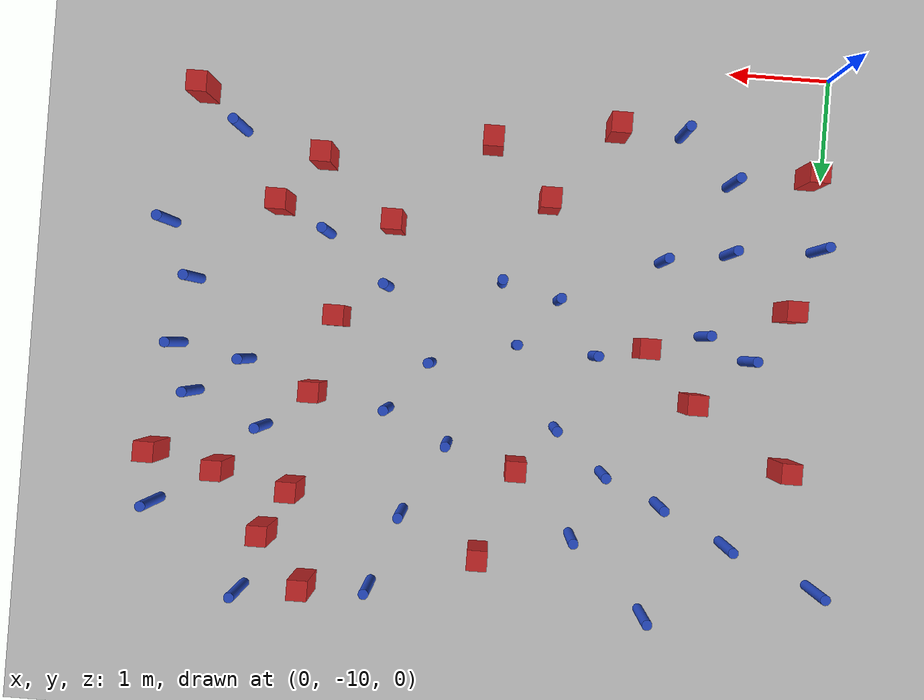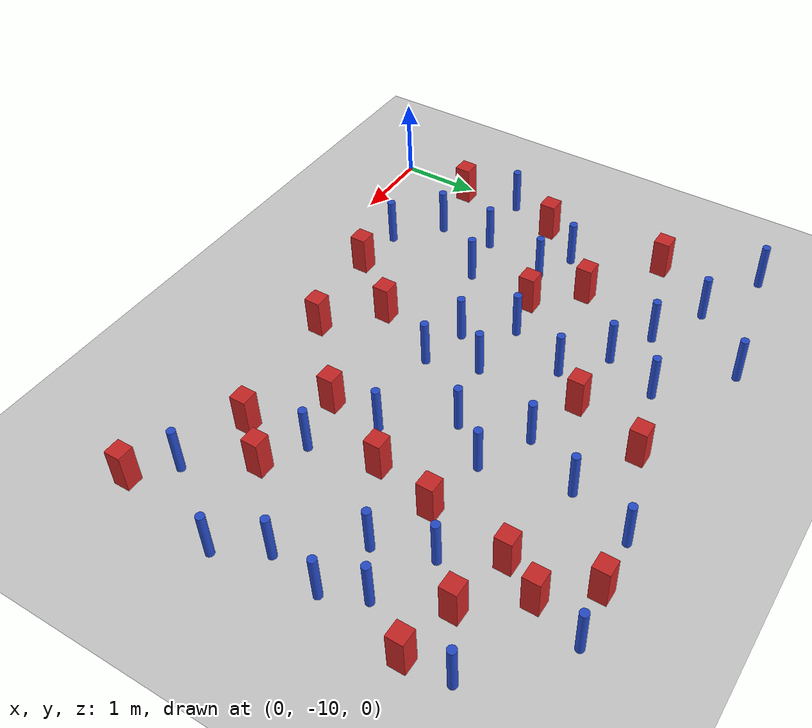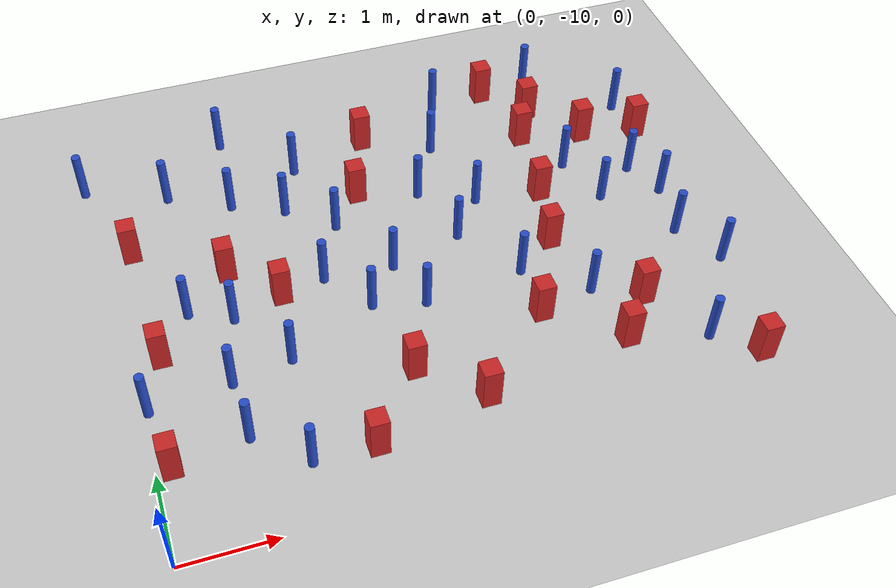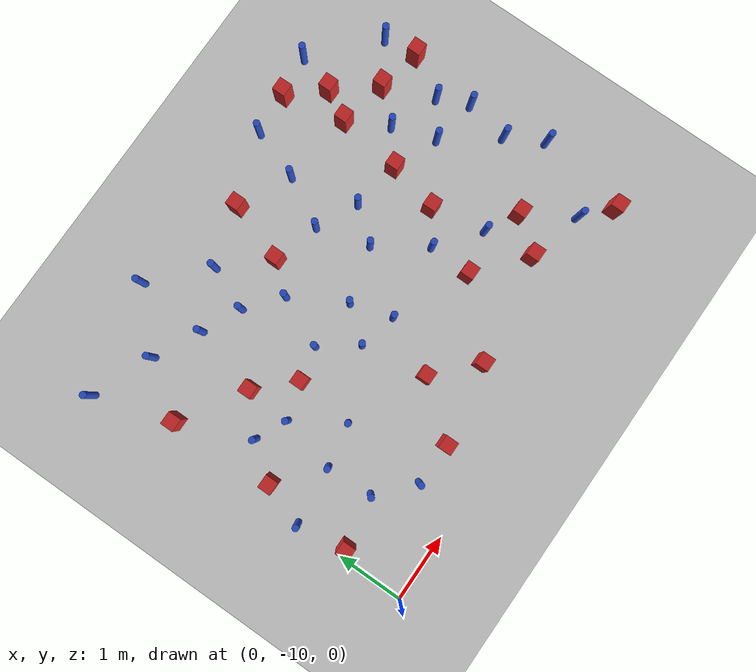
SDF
<sdf version="1.6">
 <world name="default">
  <model name="ground_plane">
   <static>1</static>
   <link name="link">
    <collision name="collision">
     <geometry><plane><normal>0 0 1</normal><size>100 100</size></plane></geometry>
     <surface><friction><ode><mu>100</mu><mu2>50</mu2></ode></friction></surface>
    </collision>
    <visual name="visual">
     <cast_shadows>0</cast_shadows>
     <geometry><plane><normal>0 0 1</normal><size>100 100</size></plane></geometry>
     <material>
      <ambient>1.0 1.0 1.0 1.0</ambient>
      <diffuse>0.8 0.8 0.8 1.0</diffuse>
      <specular>0.01 0.01 0.01 1.000000</specular>
     </material>
    </visual>
   </link>
  </model>
  <model name="square_post_obstacle1">
   <static>true</static>
   <pose>2.71441705244 -8.55619411679 1.91545236811e-07 -7.35059704564e-06 1.12565212e-07 2.39332434364e-05</pose>
   <link name="link">
    <pose>0 0 0.25 0 -0 0</pose>
    <inertial>
     <mass>100</mass>
     <inertia>
      <ixx>0.166667</ixx>
      <ixy>0</ixy>
      <ixz>0</ixz>
      <iyy>0.166667</iyy>
      <iyz>0</iyz>
      <izz>0.166667</izz>
     </inertia>
    </inertial>
    <collision name="collision"><geometry><box><size>.2 .2 .5</size></box></geometry></collision>
    <visual name="visual">
     <geometry><box><size>.2 .2 .5</size></box></geometry>
     <material>
      <script><name>Gazebo/Red</name><uri>file://media/materials/scripts/gazebo.material</uri></script>
     </material>
    </visual>
   </link>
  </model>
  <model name="pole_obstacle5">
   <static>true</static>
   <pose>2.26358996405 -5.2780489103 7.38925637345e-09 -8.47170692798e-08 1.24976765033e-08 -1.74513093019e-07</pose>
   <link name="link">
    <pose>0 0 0.3 0 -0 0</pose>
    <inertial>
     <mass>1</mass>
     <inertia><ixx>0.145833</ixx><ixy>0</ixy><ixz>0</ixz><iyy>0.145833</iyy><iyz>0</iyz><izz>0.125</izz></inertia>
    </inertial>
    <collision name="collision">
     <geometry><cylinder><radius>0.05</radius><length>.6</length></cylinder></geometry>
    </collision>
    <visual name="visual">
     <geometry><cylinder><radius>0.05</radius><length>.6</length></cylinder></geometry>
     <material>
      <script><name>Gazebo/Blue</name><uri>file://media/materials/scripts/gazebo.material</uri></script>
     </material>
    </visual>
   </link>
  </model>
  <model name="square_post_obstacle19">
   <static>true</static>
   <pose>5.28989070579 -5.09956356859 1.91545236811e-07 -7.35059704564e-06 1.12565212e-07 2.39332434364e-05</pose>
   <link name="link">
    <pose>0 0 0.25 0 -0 0</pose>
    <inertial>
     <mass>100</mass>
     <inertia>
      <ixx>0.166667</ixx>
      <ixy>0</ixy>
      <ixz>0</ixz>
      <iyy>0.166667</iyy>
      <iyz>0</iyz>
      <izz>0.166667</izz>
     </inertia>
    </inertial>
    <collision name="collision"><geometry><box><size>.2 .2 .5</size></box></geometry></collision>
    <visual name="visual">
     <geometry><box><size>.2 .2 .5</size></box></geometry>
     <material>
      <script><name>Gazebo/Red</name><uri>file://media/materials/scripts/gazebo.material</uri></script>
     </material>
    </visual>
   </link>
  </model>
  <model name="square_post_obstacle21">
   <static>true</static>
   <pose>1.66010883384 -7.17932210898 1.91545236811e-07 -7.35059704564e-06 1.12565212e-07 2.39332434364e-05</pose>
   <link name="link">
    <pose>0 0 0.25 0 -0 0</pose>
    <inertial>
     <mass>100</mass>
     <inertia>
      <ixx>0.166667</ixx>
      <ixy>0</ixy>
      <ixz>0</ixz>
      <iyy>0.166667</iyy>
      <iyz>0</iyz>
      <izz>0.166667</izz>
     </inertia>
    </inertial>
    <collision name="collision"><geometry><box><size>.2 .2 .5</size></box></geometry></collision>
    <visual name="visual">
     <geometry><box><size>.2 .2 .5</size></box></geometry>
     <material>
      <script><name>Gazebo/Red</name><uri>file://media/materials/scripts/gazebo.material</uri></script>
     </material>
    </visual>
   </link>
  </model>
  <model name="square_post_obstacle22">
   <static>true</static>
   <pose>0.160508512705 -8.99305265205 1.91545236811e-07 -7.35059704564e-06 1.12565212e-07 2.39332434364e-05</pose>
   <link name="link">
    <pose>0 0 0.25 0 -0 0</pose>
    <inertial>
     <mass>100</mass>
     <inertia>
      <ixx>0.166667</ixx>
      <ixy>0</ixy>
      <ixz>0</ixz>
      <iyy>0.166667</iyy>
      <iyz>0</iyz>
      <izz>0.166667</izz>
     </inertia>
    </inertial>
    <collision name="collision"><geometry><box><size>.2 .2 .5</size></box></geometry></collision>
    <visual name="visual">
     <geometry><box><size>.2 .2 .5</size></box></geometry>
     <material>
      <script><name>Gazebo/Red</name><uri>file://media/materials/scripts/gazebo.material</uri></script>
     </material>
    </visual>
   </link>
  </model>
  <model name="square_post_obstacle29">
   <static>true</static>
   <pose>5.77120128893 -5.69226536797 1.91545236811e-07 -7.35059704564e-06 1.12565212e-07 2.39332434364e-05</pose>
   <link name="link">
    <pose>0 0 0.25 0 -0 0</pose>
    <inertial>
     <mass>100</mass>
     <inertia>
      <ixx>0.166667</ixx>
      <ixy>0</ixy>
      <ixz>0</ixz>
      <iyy>0.166667</iyy>
      <iyz>0</iyz>
      <izz>0.166667</izz>
     </inertia>
    </inertial>
    <collision name="collision"><geometry><box><size>.2 .2 .5</size></box></geometry></collision>
    <visual name="visual">
     <geometry><box><size>.2 .2 .5</size></box></geometry>
     <material>
      <script><name>Gazebo/Red</name><uri>file://media/materials/scripts/gazebo.material</uri></script>
     </material>
    </visual>
   </link>
  </model>
  <model name="pole_obstacle30">
   <static>true</static>
   <pose>3.54600438742 -6.10327835381 7.38925637345e-09 -8.47170692798e-08 1.24976765033e-08 -1.74513093019e-07</pose>
   <link name="link">
    <pose>0 0 0.3 0 -0 0</pose>
    <inertial>
     <mass>1</mass>
     <inertia><ixx>0.145833</ixx><ixy>0</ixy><ixz>0</ixz><iyy>0.145833</iyy><iyz>0</iyz><izz>0.125</izz></inertia>
    </inertial>
    <collision name="collision">
     <geometry><cylinder><radius>0.05</radius><length>.6</length></cylinder></geometry>
    </collision>
    <visual name="visual">
     <geometry><cylinder><radius>0.05</radius><length>.6</length></cylinder></geometry>
     <material>
      <script><name>Gazebo/Blue</name><uri>file://media/materials/scripts/gazebo.material</uri></script>
     </material>
    </visual>
   </link>
  </model>
  <model name="pole_obstacle50">
   <static>true</static>
   <pose>5.4804808269 -4.52001710011 7.38925637345e-09 -8.47170692796e-08 1.24976764786e-08 -1.74513093032e-07</pose>
   <link name="link">
    <pose>0 0 0.3 0 -0 0</pose>
    <inertial>
     <mass>1</mass>
     <inertia><ixx>0.145833</ixx><ixy>0</ixy><ixz>0</ixz><iyy>0.145833</iyy><iyz>0</iyz><izz>0.125</izz></inertia>
    </inertial>
    <collision name="collision">
     <geometry><cylinder><radius>0.05</radius><length>.6</length></cylinder></geometry>
    </collision>
    <visual name="visual">
     <geometry><cylinder><radius>0.05</radius><length>.6</length></cylinder></geometry>
     <material>
      <script><name>Gazebo/Blue</name><uri>file://media/materials/scripts/gazebo.material</uri></script>
     </material>
    </visual>
   </link>
  </model>
  <model name="pole_obstacle57">
   <static>true</static>
   <pose>0.940170499249 -8.8630748402 7.38925637345e-09 -8.47170692797e-08 1.249767648e-08 -1.74513093032e-07</pose>
   <link name="link">
    <pose>0 0 0.3 0 -0 0</pose>
    <inertial>
     <mass>1</mass>
     <inertia><ixx>0.145833</ixx><ixy>0</ixy><ixz>0</ixz><iyy>0.145833</iyy><iyz>0</iyz><izz>0.125</izz></inertia>
    </inertial>
    <collision name="collision">
     <geometry><cylinder><radius>0.05</radius><length>.6</length></cylinder></geometry>
    </collision>
    <visual name="visual">
     <geometry><cylinder><radius>0.05</radius><length>.6</length></cylinder></geometry>
     <material>
      <script><name>Gazebo/Blue</name><uri>file://media/materials/scripts/gazebo.material</uri></script>
     </material>
    </visual>
   </link>
  </model>
  <model name="pole_obstacle59">
   <static>true</static>
   <pose>0.0486177777004 -8.27092171029 7.38925637345e-09 -8.47170692796e-08 1.24976764747e-08 -1.74513093035e-07</pose>
   <link name="link">
    <pose>0 0 0.3 0 -0 0</pose>
    <inertial>
     <mass>1</mass>
     <inertia><ixx>0.145833</ixx><ixy>0</ixy><ixz>0</ixz><iyy>0.145833</iyy><iyz>0</iyz><izz>0.125</izz></inertia>
    </inertial>
    <collision name="collision">
     <geometry><cylinder><radius>0.05</radius><length>.6</length></cylinder></geometry>
    </collision>
    <visual name="visual">
     <geometry><cylinder><radius>0.05</radius><length>.6</length></cylinder></geometry>
     <material>
      <script><name>Gazebo/Blue</name><uri>file://media/materials/scripts/gazebo.material</uri></script>
     </material>
    </visual>
   </link>
  </model>
  <model name="pole_obstacle61">
   <static>true</static>
   <pose>0.650569126891 -7.13187820329 7.38925637345e-09 -8.471706928e-08 1.24976765086e-08 -1.74513093015e-07</pose>
   <link name="link">
    <pose>0 0 0.3 0 -0 0</pose>
    <inertial>
     <mass>1</mass>
     <inertia><ixx>0.145833</ixx><ixy>0</ixy><ixz>0</ixz><iyy>0.145833</iyy><iyz>0</iyz><izz>0.125</izz></inertia>
    </inertial>
    <collision name="collision">
     <geometry><cylinder><radius>0.05</radius><length>.6</length></cylinder></geometry>
    </collision>
    <visual name="visual">
     <geometry><cylinder><radius>0.05</radius><length>.6</length></cylinder></geometry>
     <material>
      <script><name>Gazebo/Blue</name><uri>file://media/materials/scripts/gazebo.material</uri></script>
     </material>
    </visual>
   </link>
  </model>
  <model name="square_post_obstacle66">
   <static>true</static>
   <pose>3.1629141798 -5.02640652487 1.91545236811e-07 -7.35059704564e-06 1.12565212e-07 2.39332434364e-05</pose>
   <link name="link">
    <pose>0 0 0.25 0 -0 0</pose>
    <inertial>
     <mass>100</mass>
     <inertia>
      <ixx>0.166667</ixx>
      <ixy>0</ixy>
      <ixz>0</ixz>
      <iyy>0.166667</iyy>
      <iyz>0</iyz>
      <izz>0.166667</izz>
     </inertia>
    </inertial>
    <collision name="collision"><geometry><box><size>.2 .2 .5</size></box></geometry></collision>
    <visual name="visual">
     <geometry><box><size>.2 .2 .5</size></box></geometry>
     <material>
      <script><name>Gazebo/Red</name><uri>file://media/materials/scripts/gazebo.material</uri></script>
     </material>
    </visual>
   </link>
  </model>
  <model name="pole_obstacle66">
   <static>true</static>
   <pose>2.93390093984 -7.11893839754 7.38925637345e-09 -8.47170692798e-08 1.24976765033e-08 -1.74513093019e-07</pose>
   <link name="link">
    <pose>0 0 0.3 0 -0 0</pose>
    <inertial>
     <mass>1</mass>
     <inertia><ixx>0.145833</ixx><ixy>0</ixy><ixz>0</ixz><iyy>0.145833</iyy><iyz>0</iyz><izz>0.125</izz></inertia>
    </inertial>
    <collision name="collision">
     <geometry><cylinder><radius>0.05</radius><length>.6</length></cylinder></geometry>
    </collision>
    <visual name="visual">
     <geometry><cylinder><radius>0.05</radius><length>.6</length></cylinder></geometry>
     <material>
      <script><name>Gazebo/Blue</name><uri>file://media/materials/scripts/gazebo.material</uri></script>
     </material>
    </visual>
   </link>
  </model>
  <model name="pole_obstacle71">
   <static>true</static>
   <pose>6.07734022742 -6.43060885112 7.38925637345e-09 -8.47170692796e-08 1.24976764786e-08 -1.74513093032e-07</pose>
   <link name="link">
    <pose>0 0 0.3 0 -0 0</pose>
    <inertial>
     <mass>1</mass>
     <inertia><ixx>0.145833</ixx><ixy>0</ixy><ixz>0</ixz><iyy>0.145833</iyy><iyz>0</iyz><izz>0.125</izz></inertia>
    </inertial>
    <collision name="collision">
     <geometry><cylinder><radius>0.05</radius><length>.6</length></cylinder></geometry>
    </collision>
    <visual name="visual">
     <geometry><cylinder><radius>0.05</radius><length>.6</length></cylinder></geometry>
     <material>
      <script><name>Gazebo/Blue</name><uri>file://media/materials/scripts/gazebo.material</uri></script>
     </material>
    </visual>
   </link>
  </model>
  <model name="pole_obstacle88">
   <static>true</static>
   <pose>1.56127262203 -8.05126644182 7.38925637345e-09 -8.47170692798e-08 1.24976764881e-08 -1.74513093027e-07</pose>
   <link name="link">
    <pose>0 0 0.3 0 -0 0</pose>
    <inertial>
     <mass>1</mass>
     <inertia><ixx>0.145833</ixx><ixy>0</ixy><ixz>0</ixz><iyy>0.145833</iyy><iyz>0</iyz><izz>0.125</izz></inertia>
    </inertial>
    <collision name="collision">
     <geometry><cylinder><radius>0.05</radius><length>.6</length></cylinder></geometry>
    </collision>
    <visual name="visual">
     <geometry><cylinder><radius>0.05</radius><length>.6</length></cylinder></geometry>
     <material>
      <script><name>Gazebo/Blue</name><uri>file://media/materials/scripts/gazebo.material</uri></script>
     </material>
    </visual>
   </link>
  </model>
  <model name="square_post_obstacle83">
   <static>true</static>
   <pose>5.0443894398 -5.53916724651 1.91545236811e-07 -7.35059704564e-06 1.12565212e-07 2.39332434364e-05</pose>
   <link name="link">
    <pose>0 0 0.25 0 -0 0</pose>
    <inertial>
     <mass>100</mass>
     <inertia>
      <ixx>0.166667</ixx>
      <ixy>0</ixy>
      <ixz>0</ixz>
      <iyy>0.166667</iyy>
      <iyz>0</iyz>
      <izz>0.166667</izz>
     </inertia>
    </inertial>
    <collision name="collision"><geometry><box><size>.2 .2 .5</size></box></geometry></collision>
    <visual name="visual">
     <geometry><box><size>.2 .2 .5</size></box></geometry>
     <material>
      <script><name>Gazebo/Red</name><uri>file://media/materials/scripts/gazebo.material</uri></script>
     </material>
    </visual>
   </link>
  </model>
  <model name="pole_obstacle108">
   <static>true</static>
   <pose>4.87133378949 -8.08932043515 7.38925637345e-09 -8.471706928e-08 1.24976765081e-08 -1.74513093015e-07</pose>
   <link name="link">
    <pose>0 0 0.3 0 -0 0</pose>
    <inertial>
     <mass>1</mass>
     <inertia><ixx>0.145833</ixx><ixy>0</ixy><ixz>0</ixz><iyy>0.145833</iyy><iyz>0</iyz><izz>0.125</izz></inertia>
    </inertial>
    <collision name="collision">
     <geometry><cylinder><radius>0.05</radius><length>.6</length></cylinder></geometry>
    </collision>
    <visual name="visual">
     <geometry><cylinder><radius>0.05</radius><length>.6</length></cylinder></geometry>
     <material>
      <script><name>Gazebo/Blue</name><uri>file://media/materials/scripts/gazebo.material</uri></script>
     </material>
    </visual>
   </link>
  </model>
  <model name="square_post_obstacle96">
   <static>true</static>
   <pose>0.215471795895 -6.08434844058 1.91545236811e-07 -7.35059704564e-06 1.12565212e-07 2.39332434364e-05</pose>
   <link name="link">
    <pose>0 0 0.25 0 -0 0</pose>
    <inertial>
     <mass>100</mass>
     <inertia>
      <ixx>0.166667</ixx>
      <ixy>0</ixy>
      <ixz>0</ixz>
      <iyy>0.166667</iyy>
      <iyz>0</iyz>
      <izz>0.166667</izz>
     </inertia>
    </inertial>
    <collision name="collision"><geometry><box><size>.2 .2 .5</size></box></geometry></collision>
    <visual name="visual">
     <geometry><box><size>.2 .2 .5</size></box></geometry>
     <material>
      <script><name>Gazebo/Red</name><uri>file://media/materials/scripts/gazebo.material</uri></script>
     </material>
    </visual>
   </link>
  </model>
  <model name="pole_obstacle111">
   <static>true</static>
   <pose>3.94208417396 -5.3944527896 7.38925637345e-09 -8.47170692798e-08 1.24976765033e-08 -1.74513093019e-07</pose>
   <link name="link">
    <pose>0 0 0.3 0 -0 0</pose>
    <inertial>
     <mass>1</mass>
     <inertia><ixx>0.145833</ixx><ixy>0</ixy><ixz>0</ixz><iyy>0.145833</iyy><iyz>0</iyz><izz>0.125</izz></inertia>
    </inertial>
    <collision name="collision">
     <geometry><cylinder><radius>0.05</radius><length>.6</length></cylinder></geometry>
    </collision>
    <visual name="visual">
     <geometry><cylinder><radius>0.05</radius><length>.6</length></cylinder></geometry>
     <material>
      <script><name>Gazebo/Blue</name><uri>file://media/materials/scripts/gazebo.material</uri></script>
     </material>
    </visual>
   </link>
  </model>
  <model name="square_post_obstacle99">
   <static>true</static>
   <pose>0.27990490118 -7.64426604739 1.91545236811e-07 -7.35059704564e-06 1.12565212e-07 2.39332434364e-05</pose>
   <link name="link">
    <pose>0 0 0.25 0 -0 0</pose>
    <inertial>
     <mass>100</mass>
     <inertia>
      <ixx>0.166667</ixx>
      <ixy>0</ixy>
      <ixz>0</ixz>
      <iyy>0.166667</iyy>
      <iyz>0</iyz>
      <izz>0.166667</izz>
     </inertia>
    </inertial>
    <collision name="collision"><geometry><box><size>.2 .2 .5</size></box></geometry></collision>
    <visual name="visual">
     <geometry><box><size>.2 .2 .5</size></box></geometry>
     <material>
      <script><name>Gazebo/Red</name><uri>file://media/materials/scripts/gazebo.material</uri></script>
     </material>
    </visual>
   </link>
  </model>
  <model name="square_post_obstacle100">
   <static>true</static>
   <pose>5.35311219478 -8.34472550928 1.91545236811e-07 -7.35059704564e-06 1.12565212e-07 2.39332434364e-05</pose>
   <link name="link">
    <pose>0 0 0.25 0 -0 0</pose>
    <inertial>
     <mass>100</mass>
     <inertia>
      <ixx>0.166667</ixx>
      <ixy>0</ixy>
      <ixz>0</ixz>
      <iyy>0.166667</iyy>
      <iyz>0</iyz>
      <izz>0.166667</izz>
     </inertia>
    </inertial>
    <collision name="collision"><geometry><box><size>.2 .2 .5</size></box></geometry></collision>
    <visual name="visual">
     <geometry><box><size>.2 .2 .5</size></box></geometry>
     <material>
      <script><name>Gazebo/Red</name><uri>file://media/materials/scripts/gazebo.material</uri></script>
     </material>
    </visual>
   </link>
  </model>
  <model name="pole_obstacle117">
   <static>true</static>
   <pose>6.38607700048 -5.31896174606 7.38925637345e-09 -8.47170692796e-08 1.24976764786e-08 -1.74513093032e-07</pose>
   <link name="link">
    <pose>0 0 0.3 0 -0 0</pose>
    <inertial>
     <mass>1</mass>
     <inertia><ixx>0.145833</ixx><ixy>0</ixy><ixz>0</ixz><iyy>0.145833</iyy><iyz>0</iyz><izz>0.125</izz></inertia>
    </inertial>
    <collision name="collision">
     <geometry><cylinder><radius>0.05</radius><length>.6</length></cylinder></geometry>
    </collision>
    <visual name="visual">
     <geometry><cylinder><radius>0.05</radius><length>.6</length></cylinder></geometry>
     <material>
      <script><name>Gazebo/Blue</name><uri>file://media/materials/scripts/gazebo.material</uri></script>
     </material>
    </visual>
   </link>
  </model>
  <model name="square_post_obstacle106">
   <static>true</static>
   <pose>1.16252022471 -6.67310184528 1.91545236811e-07 -7.35059704564e-06 1.12565212e-07 2.39332434364e-05</pose>
   <link name="link">
    <pose>0 0 0.25 0 -0 0</pose>
    <inertial>
     <mass>100</mass>
     <inertia>
      <ixx>0.166667</ixx>
      <ixy>0</ixy>
      <ixz>0</ixz>
      <iyy>0.166667</iyy>
      <iyz>0</iyz>
      <izz>0.166667</izz>
     </inertia>
    </inertial>
    <collision name="collision"><geometry><box><size>.2 .2 .5</size></box></geometry></collision>
    <visual name="visual">
     <geometry><box><size>.2 .2 .5</size></box></geometry>
     <material>
      <script><name>Gazebo/Red</name><uri>file://media/materials/scripts/gazebo.material</uri></script>
     </material>
    </visual>
   </link>
  </model>
  <model name="square_post_obstacle107">
   <static>true</static>
   <pose>4.89836354818 -6.51384694861 1.91545236811e-07 -7.35059704564e-06 1.12565212e-07 2.39332434364e-05</pose>
   <link name="link">
    <pose>0 0 0.25 0 -0 0</pose>
    <inertial>
     <mass>100</mass>
     <inertia>
      <ixx>0.166667</ixx>
      <ixy>0</ixy>
      <ixz>0</ixz>
      <iyy>0.166667</iyy>
      <iyz>0</iyz>
      <izz>0.166667</izz>
     </inertia>
    </inertial>
    <collision name="collision"><geometry><box><size>.2 .2 .5</size></box></geometry></collision>
    <visual name="visual">
     <geometry><box><size>.2 .2 .5</size></box></geometry>
     <material>
      <script><name>Gazebo/Red</name><uri>file://media/materials/scripts/gazebo.material</uri></script>
     </material>
    </visual>
   </link>
  </model>
  <model name="pole_obstacle129">
   <static>true</static>
   <pose>4.24902525262 -7.60437795628 7.38925637345e-09 -8.47170692796e-08 1.24976764786e-08 -1.74513093032e-07</pose>
   <link name="link">
    <pose>0 0 0.3 0 -0 0</pose>
    <inertial>
     <mass>1</mass>
     <inertia><ixx>0.145833</ixx><ixy>0</ixy><ixz>0</ixz><iyy>0.145833</iyy><iyz>0</iyz><izz>0.125</izz></inertia>
    </inertial>
    <collision name="collision">
     <geometry><cylinder><radius>0.05</radius><length>.6</length></cylinder></geometry>
    </collision>
    <visual name="visual">
     <geometry><cylinder><radius>0.05</radius><length>.6</length></cylinder></geometry>
     <material>
      <script><name>Gazebo/Blue</name><uri>file://media/materials/scripts/gazebo.material</uri></script>
     </material>
    </visual>
   </link>
  </model>
  <model name="pole_obstacle133">
   <static>true</static>
   <pose>4.15835259689 -6.39950488618 7.38925637345e-09 -8.47170692796e-08 1.24976764786e-08 -1.74513093032e-07</pose>
   <link name="link">
    <pose>0 0 0.3 0 -0 0</pose>
    <inertial>
     <mass>1</mass>
     <inertia><ixx>0.145833</ixx><ixy>0</ixy><ixz>0</ixz><iyy>0.145833</iyy><iyz>0</iyz><izz>0.125</izz></inertia>
    </inertial>
    <collision name="collision">
     <geometry><cylinder><radius>0.05</radius><length>.6</length></cylinder></geometry>
    </collision>
    <visual name="visual">
     <geometry><cylinder><radius>0.05</radius><length>.6</length></cylinder></geometry>
     <material>
      <script><name>Gazebo/Blue</name><uri>file://media/materials/scripts/gazebo.material</uri></script>
     </material>
    </visual>
   </link>
  </model>
  <model name="pole_obstacle134">
   <static>true</static>
   <pose>5.57523599489 -6.78240243314 7.38925637345e-09 -8.47170692796e-08 1.24976764786e-08 -1.74513093032e-07</pose>
   <link name="link">
    <pose>0 0 0.3 0 -0 0</pose>
    <inertial>
     <mass>1</mass>
     <inertia><ixx>0.145833</ixx><ixy>0</ixy><ixz>0</ixz><iyy>0.145833</iyy><iyz>0</iyz><izz>0.125</izz></inertia>
    </inertial>
    <collision name="collision">
     <geometry><cylinder><radius>0.05</radius><length>.6</length></cylinder></geometry>
    </collision>
    <visual name="visual">
     <geometry><cylinder><radius>0.05</radius><length>.6</length></cylinder></geometry>
     <material>
      <script><name>Gazebo/Blue</name><uri>file://media/materials/scripts/gazebo.material</uri></script>
     </material>
    </visual>
   </link>
  </model>
  <model name="pole_obstacle135">
   <static>true</static>
   <pose>2.49519627087 -6.32908789132 7.38925637345e-09 -8.47170692798e-08 1.24976765033e-08 -1.74513093019e-07</pose>
   <link name="link">
    <pose>0 0 0.3 0 -0 0</pose>
    <inertial>
     <mass>1</mass>
     <inertia><ixx>0.145833</ixx><ixy>0</ixy><ixz>0</ixz><iyy>0.145833</iyy><iyz>0</iyz><izz>0.125</izz></inertia>
    </inertial>
    <collision name="collision">
     <geometry><cylinder><radius>0.05</radius><length>.6</length></cylinder></geometry>
    </collision>
    <visual name="visual">
     <geometry><cylinder><radius>0.05</radius><length>.6</length></cylinder></geometry>
     <material>
      <script><name>Gazebo/Blue</name><uri>file://media/materials/scripts/gazebo.material</uri></script>
     </material>
    </visual>
   </link>
  </model>
  <model name="square_post_obstacle116">
   <static>true</static>
   <pose>3.31021854955 -9.10409430489 1.91545236811e-07 -7.35059704564e-06 1.12565212e-07 2.39332434364e-05</pose>
   <link name="link">
    <pose>0 0 0.25 0 -0 0</pose>
    <inertial>
     <mass>100</mass>
     <inertia>
      <ixx>0.166667</ixx>
      <ixy>0</ixy>
      <ixz>0</ixz>
      <iyy>0.166667</iyy>
      <iyz>0</iyz>
      <izz>0.166667</izz>
     </inertia>
    </inertial>
    <collision name="collision"><geometry><box><size>.2 .2 .5</size></box></geometry></collision>
    <visual name="visual">
     <geometry><box><size>.2 .2 .5</size></box></geometry>
     <material>
      <script><name>Gazebo/Red</name><uri>file://media/materials/scripts/gazebo.material</uri></script>
     </material>
    </visual>
   </link>
  </model>
  <model name="square_post_obstacle117">
   <static>true</static>
   <pose>4.95525230701 -8.83104305914 1.91545236811e-07 -7.35059704564e-06 1.12565212e-07 2.39332434364e-05</pose>
   <link name="link">
    <pose>0 0 0.25 0 -0 0</pose>
    <inertial>
     <mass>100</mass>
     <inertia>
      <ixx>0.166667</ixx>
      <ixy>0</ixy>
      <ixz>0</ixz>
      <iyy>0.166667</iyy>
      <iyz>0</iyz>
      <izz>0.166667</izz>
     </inertia>
    </inertial>
    <collision name="collision"><geometry><box><size>.2 .2 .5</size></box></geometry></collision>
    <visual name="visual">
     <geometry><box><size>.2 .2 .5</size></box></geometry>
     <material>
      <script><name>Gazebo/Red</name><uri>file://media/materials/scripts/gazebo.material</uri></script>
     </material>
    </visual>
   </link>
  </model>
  <model name="pole_obstacle137">
   <static>true</static>
   <pose>2.15824977867 -7.07056684456 7.38925637345e-09 -8.47170692798e-08 1.24976765033e-08 -1.74513093019e-07</pose>
   <link name="link">
    <pose>0 0 0.3 0 -0 0</pose>
    <inertial>
     <mass>1</mass>
     <inertia><ixx>0.145833</ixx><ixy>0</ixy><ixz>0</ixz><iyy>0.145833</iyy><iyz>0</iyz><izz>0.125</izz></inertia>
    </inertial>
    <collision name="collision">
     <geometry><cylinder><radius>0.05</radius><length>.6</length></cylinder></geometry>
    </collision>
    <visual name="visual">
     <geometry><cylinder><radius>0.05</radius><length>.6</length></cylinder></geometry>
     <material>
      <script><name>Gazebo/Blue</name><uri>file://media/materials/scripts/gazebo.material</uri></script>
     </material>
    </visual>
   </link>
  </model>
  <model name="square_post_obstacle127">
   <static>true</static>
   <pose>2.09571469635 -9.32652840003 1.91545236811e-07 -7.35059704564e-06 1.12565212e-07 2.39332434364e-05</pose>
   <link name="link">
    <pose>0 0 0.25 0 -0 0</pose>
    <inertial>
     <mass>100</mass>
     <inertia>
      <ixx>0.166667</ixx>
      <ixy>0</ixy>
      <ixz>0</ixz>
      <iyy>0.166667</iyy>
      <iyz>0</iyz>
      <izz>0.166667</izz>
     </inertia>
    </inertial>
    <collision name="collision"><geometry><box><size>.2 .2 .5</size></box></geometry></collision>
    <visual name="visual">
     <geometry><box><size>.2 .2 .5</size></box></geometry>
     <material>
      <script><name>Gazebo/Red</name><uri>file://media/materials/scripts/gazebo.material</uri></script>
     </material>
    </visual>
   </link>
  </model>
  <model name="square_post_obstacle132">
   <static>true</static>
   <pose>4.22817737024 -8.23395343743 1.91545236811e-07 -7.35059704564e-06 1.12565212e-07 2.39332434364e-05</pose>
   <link name="link">
    <pose>0 0 0.25 0 -0 0</pose>
    <inertial>
     <mass>100</mass>
     <inertia>
      <ixx>0.166667</ixx>
      <ixy>0</ixy>
      <ixz>0</ixz>
      <iyy>0.166667</iyy>
      <iyz>0</iyz>
      <izz>0.166667</izz>
     </inertia>
    </inertial>
    <collision name="collision"><geometry><box><size>.2 .2 .5</size></box></geometry></collision>
    <visual name="visual">
     <geometry><box><size>.2 .2 .5</size></box></geometry>
     <material>
      <script><name>Gazebo/Red</name><uri>file://media/materials/scripts/gazebo.material</uri></script>
     </material>
    </visual>
   </link>
  </model>
  <model name="pole_obstacle149">
   <static>true</static>
   <pose>-0.159698995438 -4.92976107891 7.38925637345e-09 -8.47170692799e-08 1.24976765043e-08 -1.74513093019e-07</pose>
   <link name="link">
    <pose>0 0 0.3 0 -0 0</pose>
    <inertial>
     <mass>1</mass>
     <inertia><ixx>0.145833</ixx><ixy>0</ixy><ixz>0</ixz><iyy>0.145833</iyy><iyz>0</iyz><izz>0.125</izz></inertia>
    </inertial>
    <collision name="collision">
     <geometry><cylinder><radius>0.05</radius><length>.6</length></cylinder></geometry>
    </collision>
    <visual name="visual">
     <geometry><cylinder><radius>0.05</radius><length>.6</length></cylinder></geometry>
     <material>
      <script><name>Gazebo/Blue</name><uri>file://media/materials/scripts/gazebo.material</uri></script>
     </material>
    </visual>
   </link>
  </model>
  <model name="pole_obstacle151">
   <static>true</static>
   <pose>4.21140315789 -4.65111079344 7.38925637345e-09 -8.47170692796e-08 1.24976764786e-08 -1.74513093032e-07</pose>
   <link name="link">
    <pose>0 0 0.3 0 -0 0</pose>
    <inertial>
     <mass>1</mass>
     <inertia><ixx>0.145833</ixx><ixy>0</ixy><ixz>0</ixz><iyy>0.145833</iyy><iyz>0</iyz><izz>0.125</izz></inertia>
    </inertial>
    <collision name="collision">
     <geometry><cylinder><radius>0.05</radius><length>.6</length></cylinder></geometry>
    </collision>
    <visual name="visual">
     <geometry><cylinder><radius>0.05</radius><length>.6</length></cylinder></geometry>
     <material>
      <script><name>Gazebo/Blue</name><uri>file://media/materials/scripts/gazebo.material</uri></script>
     </material>
    </visual>
   </link>
  </model>
  <model name="pole_obstacle164">
   <static>true</static>
   <pose>1.10574542836 -7.34487791808 7.38925637345e-09 -8.47170692799e-08 1.24976765033e-08 -1.74513093018e-07</pose>
   <link name="link">
    <pose>0 0 0.3 0 -0 0</pose>
    <inertial>
     <mass>1</mass>
     <inertia><ixx>0.145833</ixx><ixy>0</ixy><ixz>0</ixz><iyy>0.145833</iyy><iyz>0</iyz><izz>0.125</izz></inertia>
    </inertial>
    <collision name="collision">
     <geometry><cylinder><radius>0.05</radius><length>.6</length></cylinder></geometry>
    </collision>
    <visual name="visual">
     <geometry><cylinder><radius>0.05</radius><length>.6</length></cylinder></geometry>
     <material>
      <script><name>Gazebo/Blue</name><uri>file://media/materials/scripts/gazebo.material</uri></script>
     </material>
    </visual>
   </link>
  </model>
  <model name="pole_obstacle174">
   <static>true</static>
   <pose>0.745667847215 -5.30611303877 7.38925637345e-09 -8.471706928e-08 1.24976765086e-08 -1.74513093015e-07</pose>
   <link name="link">
    <pose>0 0 0.3 0 -0 0</pose>
    <inertial>
     <mass>1</mass>
     <inertia><ixx>0.145833</ixx><ixy>0</ixy><ixz>0</ixz><iyy>0.145833</iyy><iyz>0</iyz><izz>0.125</izz></inertia>
    </inertial>
    <collision name="collision">
     <geometry><cylinder><radius>0.05</radius><length>.6</length></cylinder></geometry>
    </collision>
    <visual name="visual">
     <geometry><cylinder><radius>0.05</radius><length>.6</length></cylinder></geometry>
     <material>
      <script><name>Gazebo/Blue</name><uri>file://media/materials/scripts/gazebo.material</uri></script>
     </material>
    </visual>
   </link>
  </model>
  <model name="square_post_obstacle164">
   <static>true</static>
   <pose>6.19489946627 -9.41052199477 1.91545236811e-07 -7.35059704564e-06 1.12565212e-07 2.39332434364e-05</pose>
   <link name="link">
    <pose>0 0 0.25 0 -0 0</pose>
    <inertial>
     <mass>100</mass>
     <inertia>
      <ixx>0.166667</ixx>
      <ixy>0</ixy>
      <ixz>0</ixz>
      <iyy>0.166667</iyy>
      <iyz>0</iyz>
      <izz>0.166667</izz>
     </inertia>
    </inertial>
    <collision name="collision"><geometry><box><size>.2 .2 .5</size></box></geometry></collision>
    <visual name="visual">
     <geometry><box><size>.2 .2 .5</size></box></geometry>
     <material>
      <script><name>Gazebo/Red</name><uri>file://media/materials/scripts/gazebo.material</uri></script>
     </material>
    </visual>
   </link>
  </model>
  <model name="pole_obstacle175">
   <static>true</static>
   <pose>3.7667441973 -6.88154921846 7.38925637345e-09 -8.47170692798e-08 1.24976765033e-08 -1.74513093019e-07</pose>
   <link name="link">
    <pose>0 0 0.3 0 -0 0</pose>
    <inertial>
     <mass>1</mass>
     <inertia><ixx>0.145833</ixx><ixy>0</ixy><ixz>0</ixz><iyy>0.145833</iyy><iyz>0</iyz><izz>0.125</izz></inertia>
    </inertial>
    <collision name="collision">
     <geometry><cylinder><radius>0.05</radius><length>.6</length></cylinder></geometry>
    </collision>
    <visual name="visual">
     <geometry><cylinder><radius>0.05</radius><length>.6</length></cylinder></geometry>
     <material>
      <script><name>Gazebo/Blue</name><uri>file://media/materials/scripts/gazebo.material</uri></script>
     </material>
    </visual>
   </link>
  </model>
  <model name="pole_obstacle176">
   <static>true</static>
   <pose>6.14749565435 -7.54247305018 7.38925637345e-09 -8.47170692796e-08 1.24976764786e-08 -1.74513093032e-07</pose>
   <link name="link">
    <pose>0 0 0.3 0 -0 0</pose>
    <inertial>
     <mass>1</mass>
     <inertia><ixx>0.145833</ixx><ixy>0</ixy><ixz>0</ixz><iyy>0.145833</iyy><iyz>0</iyz><izz>0.125</izz></inertia>
    </inertial>
    <collision name="collision">
     <geometry><cylinder><radius>0.05</radius><length>.6</length></cylinder></geometry>
    </collision>
    <visual name="visual">
     <geometry><cylinder><radius>0.05</radius><length>.6</length></cylinder></geometry>
     <material>
      <script><name>Gazebo/Blue</name><uri>file://media/materials/scripts/gazebo.material</uri></script>
     </material>
    </visual>
   </link>
  </model>
  <model name="square_post_obstacle173">
   <static>true</static>
   <pose>2.8546367671 -5.90568310347 1.91545236811e-07 -7.35059704564e-06 1.12565212e-07 2.39332434364e-05</pose>
   <link name="link">
    <pose>0 0 0.25 0 -0 0</pose>
    <inertial>
     <mass>100</mass>
     <inertia>
      <ixx>0.166667</ixx>
      <ixy>0</ixy>
      <ixz>0</ixz>
      <iyy>0.166667</iyy>
      <iyz>0</iyz>
      <izz>0.166667</izz>
     </inertia>
    </inertial>
    <collision name="collision"><geometry><box><size>.2 .2 .5</size></box></geometry></collision>
    <visual name="visual">
     <geometry><box><size>.2 .2 .5</size></box></geometry>
     <material>
      <script><name>Gazebo/Red</name><uri>file://media/materials/scripts/gazebo.material</uri></script>
     </material>
    </visual>
   </link>
  </model>
  <model name="square_post_obstacle180">
   <static>true</static>
   <pose>4.86198774725 -4.60934402002 1.91545236811e-07 -7.35059704564e-06 1.12565212e-07 2.39332434364e-05</pose>
   <link name="link">
    <pose>0 0 0.25 0 -0 0</pose>
    <inertial>
     <mass>100</mass>
     <inertia>
      <ixx>0.166667</ixx>
      <ixy>0</ixy>
      <ixz>0</ixz>
      <iyy>0.166667</iyy>
      <iyz>0</iyz>
      <izz>0.166667</izz>
     </inertia>
    </inertial>
    <collision name="collision"><geometry><box><size>.2 .2 .5</size></box></geometry></collision>
    <visual name="visual">
     <geometry><box><size>.2 .2 .5</size></box></geometry>
     <material>
      <script><name>Gazebo/Red</name><uri>file://media/materials/scripts/gazebo.material</uri></script>
     </material>
    </visual>
   </link>
  </model>
  <model name="square_post_obstacle183">
   <static>true</static>
   <pose>6.43328416386 -5.82454655073 1.91545236811e-07 -7.35059704564e-06 1.12565212e-07 2.39332434364e-05</pose>
   <link name="link">
    <pose>0 0 0.25 0 -0 0</pose>
    <inertial>
     <mass>100</mass>
     <inertia>
      <ixx>0.166667</ixx>
      <ixy>0</ixy>
      <ixz>0</ixz>
      <iyy>0.166667</iyy>
      <iyz>0</iyz>
      <izz>0.166667</izz>
     </inertia>
    </inertial>
    <collision name="collision"><geometry><box><size>.2 .2 .5</size></box></geometry></collision>
    <visual name="visual">
     <geometry><box><size>.2 .2 .5</size></box></geometry>
     <material>
      <script><name>Gazebo/Red</name><uri>file://media/materials/scripts/gazebo.material</uri></script>
     </material>
    </visual>
   </link>
  </model>
  <model name="square_post_obstacle194">
   <static>true</static>
   <pose>4.71611487511 -7.27167417787 1.91545236811e-07 -7.35059704564e-06 1.12565212e-07 2.39332434364e-05</pose>
   <link name="link">
    <pose>0 0 0.25 0 -0 0</pose>
    <inertial>
     <mass>100</mass>
     <inertia>
      <ixx>0.166667</ixx>
      <ixy>0</ixy>
      <ixz>0</ixz>
      <iyy>0.166667</iyy>
      <iyz>0</iyz>
      <izz>0.166667</izz>
     </inertia>
    </inertial>
    <collision name="collision"><geometry><box><size>.2 .2 .5</size></box></geometry></collision>
    <visual name="visual">
     <geometry><box><size>.2 .2 .5</size></box></geometry>
     <material>
      <script><name>Gazebo/Red</name><uri>file://media/materials/scripts/gazebo.material</uri></script>
     </material>
    </visual>
   </link>
  </model>
  <model name="pole_obstacle190">
   <static>true</static>
   <pose>3.11923524596 -7.72840985513 7.38925637345e-09 -8.47170692798e-08 1.24976765033e-08 -1.74513093019e-07</pose>
   <link name="link">
    <pose>0 0 0.3 0 -0 0</pose>
    <inertial>
     <mass>1</mass>
     <inertia><ixx>0.145833</ixx><ixy>0</ixy><ixz>0</ixz><iyy>0.145833</iyy><iyz>0</iyz><izz>0.125</izz></inertia>
    </inertial>
    <collision name="collision">
     <geometry><cylinder><radius>0.05</radius><length>.6</length></cylinder></geometry>
    </collision>
    <visual name="visual">
     <geometry><cylinder><radius>0.05</radius><length>.6</length></cylinder></geometry>
     <material>
      <script><name>Gazebo/Blue</name><uri>file://media/materials/scripts/gazebo.material</uri></script>
     </material>
    </visual>
   </link>
  </model>
  <model name="pole_obstacle194">
   <static>true</static>
   <pose>1.50896241701 -4.56637496589 7.38925637345e-09 -8.47170692799e-08 1.24976765033e-08 -1.74513093018e-07</pose>
   <link name="link">
    <pose>0 0 0.3 0 -0 0</pose>
    <inertial>
     <mass>1</mass>
     <inertia><ixx>0.145833</ixx><ixy>0</ixy><ixz>0</ixz><iyy>0.145833</iyy><iyz>0</iyz><izz>0.125</izz></inertia>
    </inertial>
    <collision name="collision">
     <geometry><cylinder><radius>0.05</radius><length>.6</length></cylinder></geometry>
    </collision>
    <visual name="visual">
     <geometry><cylinder><radius>0.05</radius><length>.6</length></cylinder></geometry>
     <material>
      <script><name>Gazebo/Blue</name><uri>file://media/materials/scripts/gazebo.material</uri></script>
     </material>
    </visual>
   </link>
  </model>
  <model name="pole_obstacle195">
   <static>true</static>
   <pose>5.78767814243 -9.05425216101 7.38925637345e-09 -8.471706928e-08 1.24976765081e-08 -1.74513093015e-07</pose>
   <link name="link">
    <pose>0 0 0.3 0 -0 0</pose>
    <inertial>
     <mass>1</mass>
     <inertia><ixx>0.145833</ixx><ixy>0</ixy><ixz>0</ixz><iyy>0.145833</iyy><iyz>0</iyz><izz>0.125</izz></inertia>
    </inertial>
    <collision name="collision">
     <geometry><cylinder><radius>0.05</radius><length>.6</length></cylinder></geometry>
    </collision>
    <visual name="visual">
     <geometry><cylinder><radius>0.05</radius><length>.6</length></cylinder></geometry>
     <material>
      <script><name>Gazebo/Blue</name><uri>file://media/materials/scripts/gazebo.material</uri></script>
     </material>
    </visual>
   </link>
  </model>
  <model name="pole_obstacle201">
   <static>true</static>
   <pose>1.45077408986 -9.31708756276 7.38925637345e-09 -8.47170692798e-08 1.24976764881e-08 -1.74513093027e-07</pose>
   <link name="link">
    <pose>0 0 0.3 0 -0 0</pose>
    <inertial>
     <mass>1</mass>
     <inertia><ixx>0.145833</ixx><ixy>0</ixy><ixz>0</ixz><iyy>0.145833</iyy><iyz>0</iyz><izz>0.125</izz></inertia>
    </inertial>
    <collision name="collision">
     <geometry><cylinder><radius>0.05</radius><length>.6</length></cylinder></geometry>
    </collision>
    <visual name="visual">
     <geometry><cylinder><radius>0.05</radius><length>.6</length></cylinder></geometry>
     <material>
      <script><name>Gazebo/Blue</name><uri>file://media/materials/scripts/gazebo.material</uri></script>
     </material>
    </visual>
   </link>
  </model>
  <model name="pole_obstacle202">
   <static>true</static>
   <pose>6.27524176434 -6.8910271101 7.38925637345e-09 -8.47170692796e-08 1.24976764786e-08 -1.74513093032e-07</pose>
   <link name="link">
    <pose>0 0 0.3 0 -0 0</pose>
    <inertial>
     <mass>1</mass>
     <inertia><ixx>0.145833</ixx><ixy>0</ixy><ixz>0</ixz><iyy>0.145833</iyy><iyz>0</iyz><izz>0.125</izz></inertia>
    </inertial>
    <collision name="collision">
     <geometry><cylinder><radius>0.05</radius><length>.6</length></cylinder></geometry>
    </collision>
    <visual name="visual">
     <geometry><cylinder><radius>0.05</radius><length>.6</length></cylinder></geometry>
     <material>
      <script><name>Gazebo/Blue</name><uri>file://media/materials/scripts/gazebo.material</uri></script>
     </material>
    </visual>
   </link>
  </model>
  <model name="pole_obstacle206">
   <static>true</static>
   <pose>1.42672368415 -5.65337294664 7.38925637345e-09 -8.47170692799e-08 1.24976765033e-08 -1.74513093018e-07</pose>
   <link name="link">
    <pose>0 0 0.3 0 -0 0</pose>
    <inertial>
     <mass>1</mass>
     <inertia><ixx>0.145833</ixx><ixy>0</ixy><ixz>0</ixz><iyy>0.145833</iyy><iyz>0</iyz><izz>0.125</izz></inertia>
    </inertial>
    <collision name="collision">
     <geometry><cylinder><radius>0.05</radius><length>.6</length></cylinder></geometry>
    </collision>
    <visual name="visual">
     <geometry><cylinder><radius>0.05</radius><length>.6</length></cylinder></geometry>
     <material>
      <script><name>Gazebo/Blue</name><uri>file://media/materials/scripts/gazebo.material</uri></script>
     </material>
    </visual>
   </link>
  </model>
  <model name="pole_obstacle208">
   <static>true</static>
   <pose>2.00088134167 -5.92061813467 7.38925637345e-09 -8.47170692799e-08 1.24976765014e-08 -1.7451309302e-07</pose>
   <link name="link">
    <pose>0 0 0.3 0 -0 0</pose>
    <inertial>
     <mass>1</mass>
     <inertia><ixx>0.145833</ixx><ixy>0</ixy><ixz>0</ixz><iyy>0.145833</iyy><iyz>0</iyz><izz>0.125</izz></inertia>
    </inertial>
    <collision name="collision">
     <geometry><cylinder><radius>0.05</radius><length>.6</length></cylinder></geometry>
    </collision>
    <visual name="visual">
     <geometry><cylinder><radius>0.05</radius><length>.6</length></cylinder></geometry>
     <material>
      <script><name>Gazebo/Blue</name><uri>file://media/materials/scripts/gazebo.material</uri></script>
     </material>
    </visual>
   </link>
  </model>
  <model name="pole_obstacle211">
   <static>true</static>
   <pose>0.914462319038 -8.17279896824 7.38925637345e-09 -8.47170692797e-08 1.249767648e-08 -1.74513093032e-07</pose>
   <link name="link">
    <pose>0 0 0.3 0 -0 0</pose>
    <inertial>
     <mass>1</mass>
     <inertia><ixx>0.145833</ixx><ixy>0</ixy><ixz>0</ixz><iyy>0.145833</iyy><iyz>0</iyz><izz>0.125</izz></inertia>
    </inertial>
    <collision name="collision">
     <geometry><cylinder><radius>0.05</radius><length>.6</length></cylinder></geometry>
    </collision>
    <visual name="visual">
     <geometry><cylinder><radius>0.05</radius><length>.6</length></cylinder></geometry>
     <material>
      <script><name>Gazebo/Blue</name><uri>file://media/materials/scripts/gazebo.material</uri></script>
     </material>
    </visual>
   </link>
  </model>
  <model name="pole_obstacle220">
   <static>true</static>
   <pose>2.55129000957 -7.59340997922 7.38925637345e-09 -8.47170692798e-08 1.24976765033e-08 -1.74513093019e-07</pose>
   <link name="link">
    <pose>0 0 0.3 0 -0 0</pose>
    <inertial>
     <mass>1</mass>
     <inertia><ixx>0.145833</ixx><ixy>0</ixy><ixz>0</ixz><iyy>0.145833</iyy><iyz>0</iyz><izz>0.125</izz></inertia>
    </inertial>
    <collision name="collision">
     <geometry><cylinder><radius>0.05</radius><length>.6</length></cylinder></geometry>
    </collision>
    <visual name="visual">
     <geometry><cylinder><radius>0.05</radius><length>.6</length></cylinder></geometry>
     <material>
      <script><name>Gazebo/Blue</name><uri>file://media/materials/scripts/gazebo.material</uri></script>
     </material>
    </visual>
   </link>
  </model>
  <model name="pole_obstacle227">
   <static>true</static>
   <pose>5.36415000957 -6.13955997922 7.38925637345e-09 -8.47170692796e-08 1.24976764786e-08 -1.74513093032e-07</pose>
   <link name="link">
    <pose>0 0 0.3 0 -0 0</pose>
    <inertial>
     <mass>1</mass>
     <inertia><ixx>0.145833</ixx><ixy>0</ixy><ixz>0</ixz><iyy>0.145833</iyy><iyz>0</iyz><izz>0.125</izz></inertia>
    </inertial>
    <collision name="collision">
     <geometry><cylinder><radius>0.05</radius><length>.6</length></cylinder></geometry>
    </collision>
    <visual name="visual">
     <geometry><cylinder><radius>0.05</radius><length>.6</length></cylinder></geometry>
     <material>
      <script><name>Gazebo/Blue</name><uri>file://media/materials/scripts/gazebo.material</uri></script>
     </material>
    </visual>
   </link>
  </model>
  <model name="pole_obstacle231">
   <static>true</static>
   <pose>6.44105000957 -8.08615997922 7.38925637345e-09 -8.471706928e-08 1.24976765081e-08 -1.74513093015e-07</pose>
   <link name="link">
    <pose>0 0 0.3 0 -0 0</pose>
    <inertial>
     <mass>1</mass>
     <inertia><ixx>0.145833</ixx><ixy>0</ixy><ixz>0</ixz><iyy>0.145833</iyy><iyz>0</iyz><izz>0.125</izz></inertia>
    </inertial>
    <collision name="collision">
     <geometry><cylinder><radius>0.05</radius><length>.6</length></cylinder></geometry>
    </collision>
    <visual name="visual">
     <geometry><cylinder><radius>0.05</radius><length>.6</length></cylinder></geometry>
     <material>
      <script><name>Gazebo/Blue</name><uri>file://media/materials/scripts/gazebo.material</uri></script>
     </material>
    </visual>
   </link>
  </model>
 </world>
</sdf>
